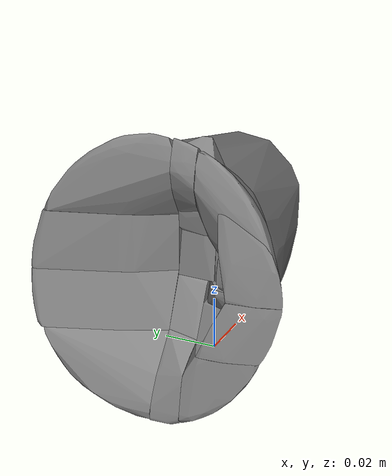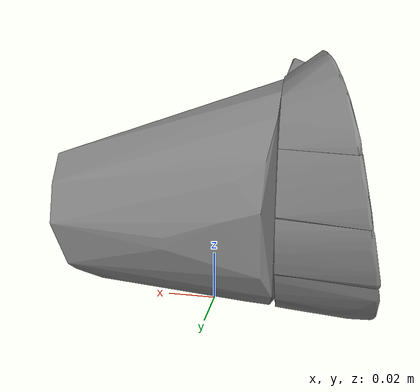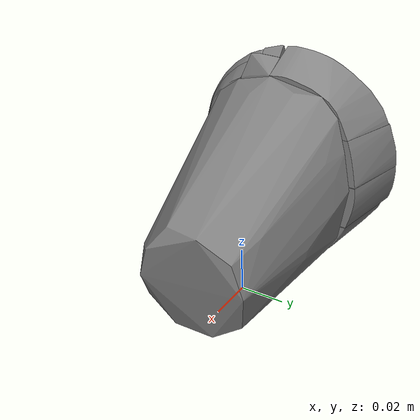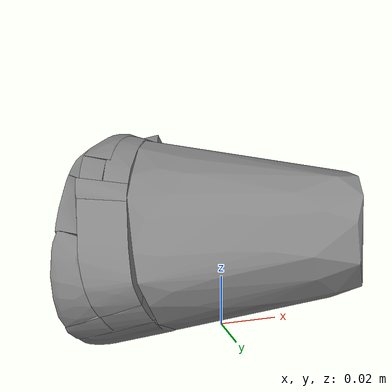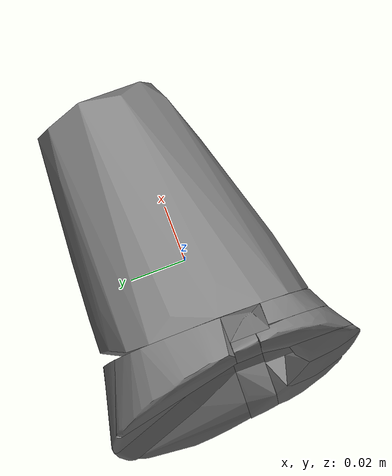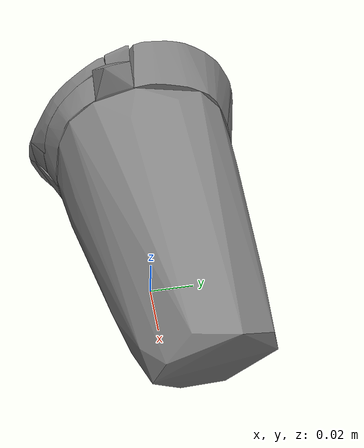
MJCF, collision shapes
<mujoco model="red_cup">
  <asset>
    <material name="red_cup_mat" rgba="0.8 0.12 0.12 1" specular="0.3" shininess="0.1"/>
    <mesh name="red_cup_vis" file="red_cup_libero.obj" scale="1 1 1"/>
    <mesh name="red_cup_col_0" file="red_cup_col_0.obj" scale="1 1 1"/>
    <mesh name="red_cup_col_1" file="red_cup_col_1.obj" scale="1 1 1"/>
    <mesh name="red_cup_col_2" file="red_cup_col_2.obj" scale="1 1 1"/>
    <mesh name="red_cup_col_3" file="red_cup_col_3.obj" scale="1 1 1"/>
    <mesh name="red_cup_col_4" file="red_cup_col_4.obj" scale="1 1 1"/>
    <mesh name="red_cup_col_5" file="red_cup_col_5.obj" scale="1 1 1"/>
    <mesh name="red_cup_col_6" file="red_cup_col_6.obj" scale="1 1 1"/>
    <mesh name="red_cup_col_7" file="red_cup_col_7.obj" scale="1 1 1"/>
    <mesh name="red_cup_col_8" file="red_cup_col_8.obj" scale="1 1 1"/>
    <mesh name="red_cup_col_9" file="red_cup_col_9.obj" scale="1 1 1"/>
    <mesh name="red_cup_col_10" file="red_cup_col_10.obj" scale="1 1 1"/>
    <mesh name="red_cup_col_11" file="red_cup_col_11.obj" scale="1 1 1"/>
    <mesh name="red_cup_col_12" file="red_cup_col_12.obj" scale="1 1 1"/>
    <mesh name="red_cup_col_13" file="red_cup_col_13.obj" scale="1 1 1"/>
    <mesh name="red_cup_col_14" file="red_cup_col_14.obj" scale="1 1 1"/>
    <mesh name="red_cup_col_15" file="red_cup_col_15.obj" scale="1 1 1"/>
    <mesh name="red_cup_col_16" file="red_cup_col_16.obj" scale="1 1 1"/>
    <mesh name="red_cup_col_17" file="red_cup_col_17.obj" scale="1 1 1"/>
  </asset>
  <worldbody>
    <body>
      <body name="object">
        <geom type="mesh" mesh="red_cup_vis" material="red_cup_mat" group="1" contype="0" conaffinity="0"/>
        <geom type="mesh" mesh="red_cup_col_0" group="0" density="100" friction="0.95 0.3 0.1" solimp="0.998 0.998 0.001" solref="0.001 1"/>
        <geom type="mesh" mesh="red_cup_col_1" group="0" density="100" friction="0.95 0.3 0.1" solimp="0.998 0.998 0.001" solref="0.001 1"/>
        <geom type="mesh" mesh="red_cup_col_2" group="0" density="100" friction="0.95 0.3 0.1" solimp="0.998 0.998 0.001" solref="0.001 1"/>
        <geom type="mesh" mesh="red_cup_col_3" group="0" density="100" friction="0.95 0.3 0.1" solimp="0.998 0.998 0.001" solref="0.001 1"/>
        <geom type="mesh" mesh="red_cup_col_4" group="0" density="100" friction="0.95 0.3 0.1" solimp="0.998 0.998 0.001" solref="0.001 1"/>
        <geom type="mesh" mesh="red_cup_col_5" group="0" density="100" friction="0.95 0.3 0.1" solimp="0.998 0.998 0.001" solref="0.001 1"/>
        <geom type="mesh" mesh="red_cup_col_6" group="0" density="100" friction="0.95 0.3 0.1" solimp="0.998 0.998 0.001" solref="0.001 1"/>
        <geom type="mesh" mesh="red_cup_col_7" group="0" density="100" friction="0.95 0.3 0.1" solimp="0.998 0.998 0.001" solref="0.001 1"/>
        <geom type="mesh" mesh="red_cup_col_8" group="0" density="100" friction="0.95 0.3 0.1" solimp="0.998 0.998 0.001" solref="0.001 1"/>
        <geom type="mesh" mesh="red_cup_col_9" group="0" density="100" friction="0.95 0.3 0.1" solimp="0.998 0.998 0.001" solref="0.001 1"/>
        <geom type="mesh" mesh="red_cup_col_10" group="0" density="100" friction="0.95 0.3 0.1" solimp="0.998 0.998 0.001" solref="0.001 1"/>
        <geom type="mesh" mesh="red_cup_col_11" group="0" density="100" friction="0.95 0.3 0.1" solimp="0.998 0.998 0.001" solref="0.001 1"/>
        <geom type="mesh" mesh="red_cup_col_12" group="0" density="100" friction="0.95 0.3 0.1" solimp="0.998 0.998 0.001" solref="0.001 1"/>
        <geom type="mesh" mesh="red_cup_col_13" group="0" density="100" friction="0.95 0.3 0.1" solimp="0.998 0.998 0.001" solref="0.001 1"/>
        <geom type="mesh" mesh="red_cup_col_14" group="0" density="100" friction="0.95 0.3 0.1" solimp="0.998 0.998 0.001" solref="0.001 1"/>
        <geom type="mesh" mesh="red_cup_col_15" group="0" density="100" friction="0.95 0.3 0.1" solimp="0.998 0.998 0.001" solref="0.001 1"/>
        <geom type="mesh" mesh="red_cup_col_16" group="0" density="100" friction="0.95 0.3 0.1" solimp="0.998 0.998 0.001" solref="0.001 1"/>
        <geom type="mesh" mesh="red_cup_col_17" group="0" density="100" friction="0.95 0.3 0.1" solimp="0.998 0.998 0.001" solref="0.001 1"/>
      </body>
      <site rgba="0 0 0 0" size="0.005" pos="0 0 0" name="bottom_site"/>
      <site rgba="0 0 0 0" size="0.005" pos="0 0 0.10043" name="top_site"/>
      <site rgba="0 0 0 0" size="0.005" pos="0.06231 0 0" name="horizontal_radius_site"/>
      <site type="box" rgba="0 0 0 0" pos="0 0 0.05523" size="0.03738 0.02767 0.03013" name="contain_region"/>
    </body>
  </worldbody>
</mujoco>
